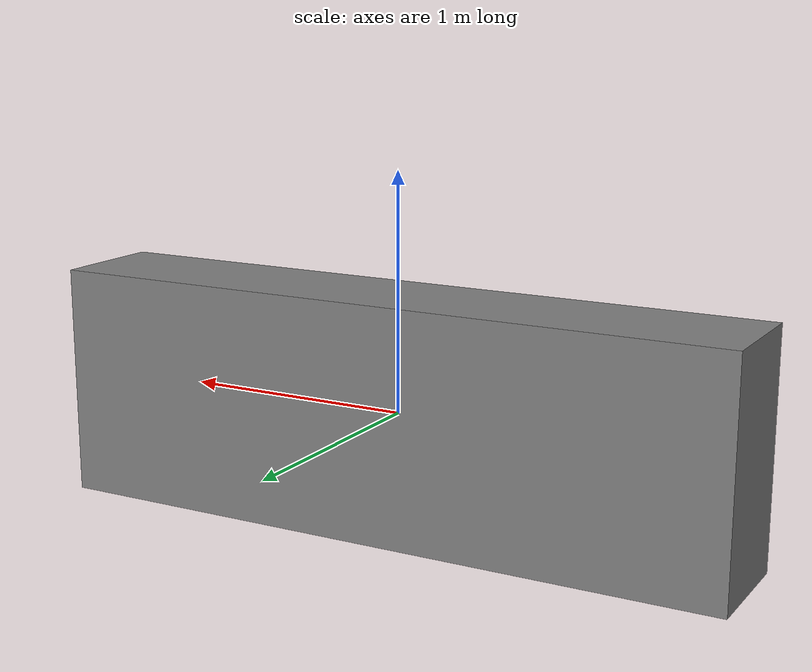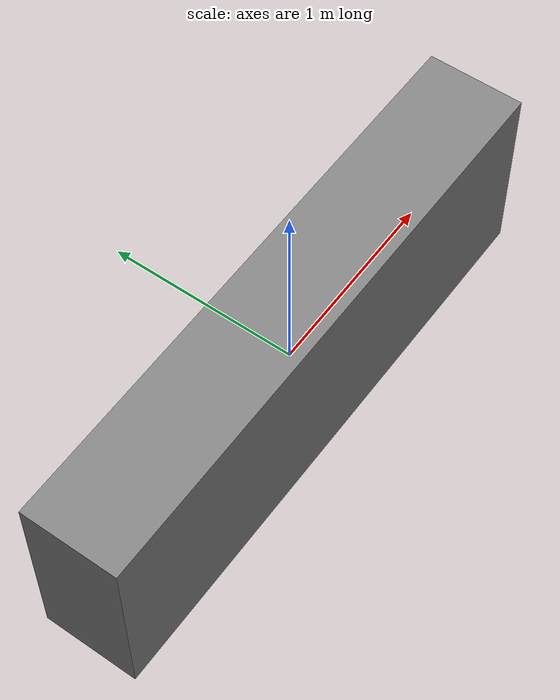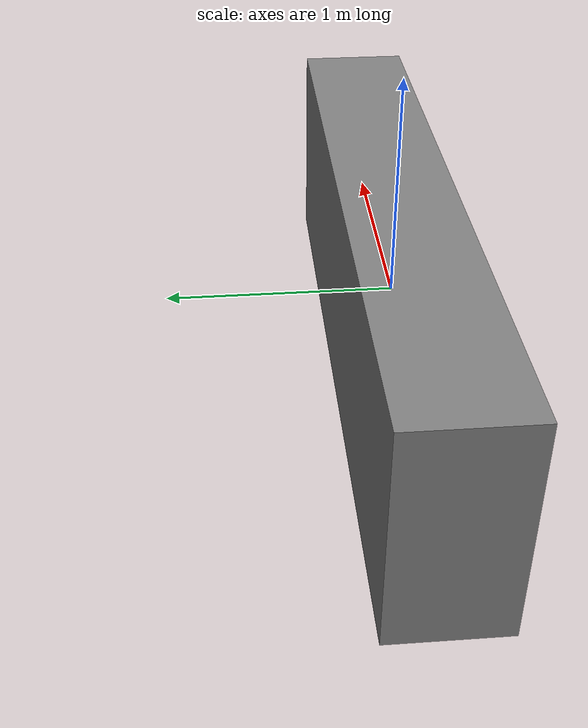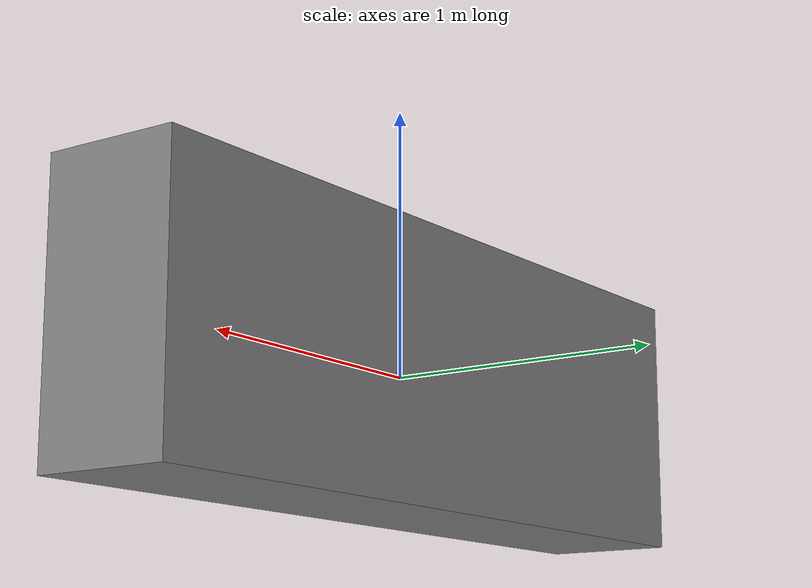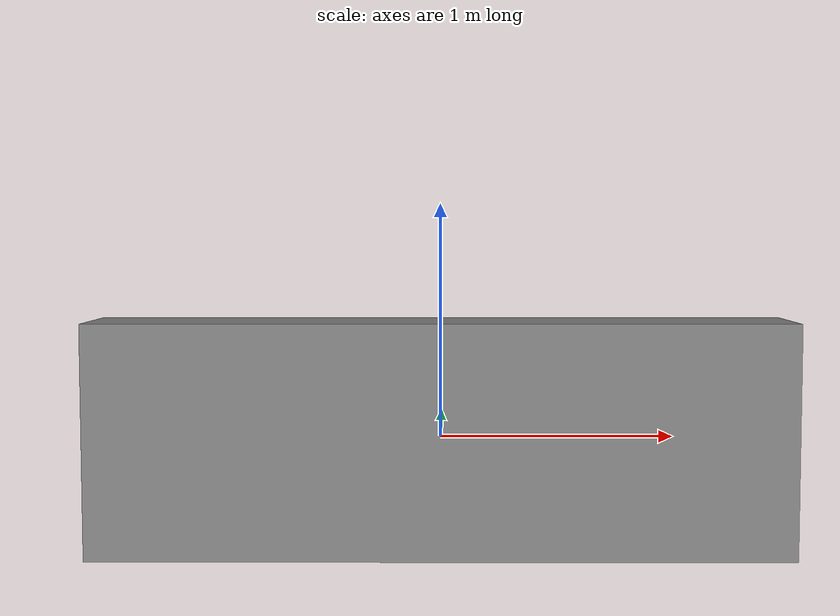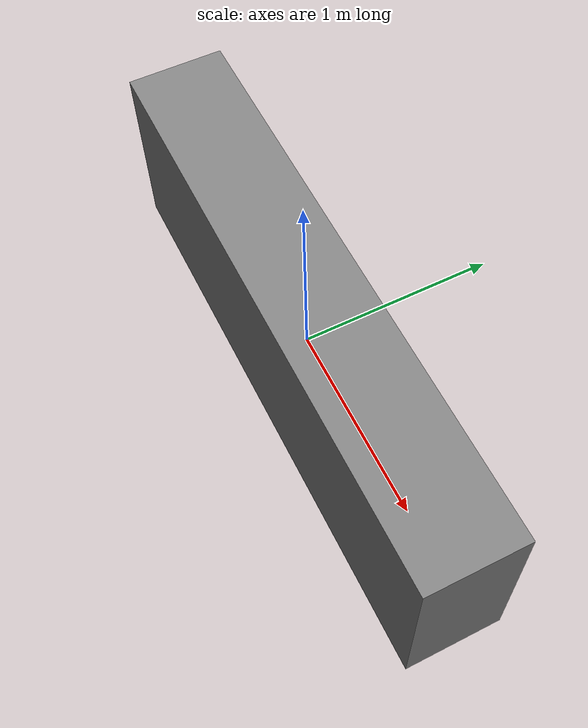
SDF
<?xml version="1.0" ?>
<sdf version="1.10">
  <model name="my_barrier">
    <static>true</static>
    <link name="link">
      <collision name="collision">
        <geometry><box><size>3.0 0.5 1.0</size></box></geometry>
      </collision>
      <visual name="visual">
        <geometry><box><size>3.0 0.5 1.0</size></box></geometry>
        <material><ambient>0.5 0.5 0.5 1</ambient><diffuse>0.5 0.5 0.5 1</diffuse></material>
      </visual>
    </link>
  </model>
</sdf>
